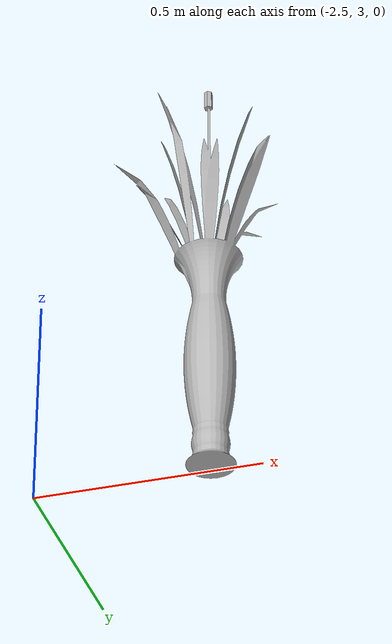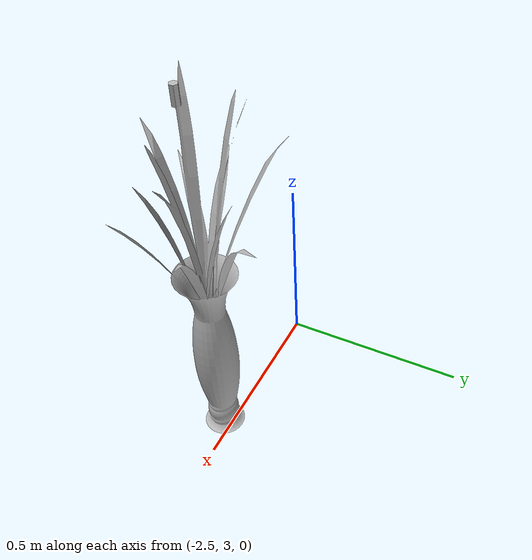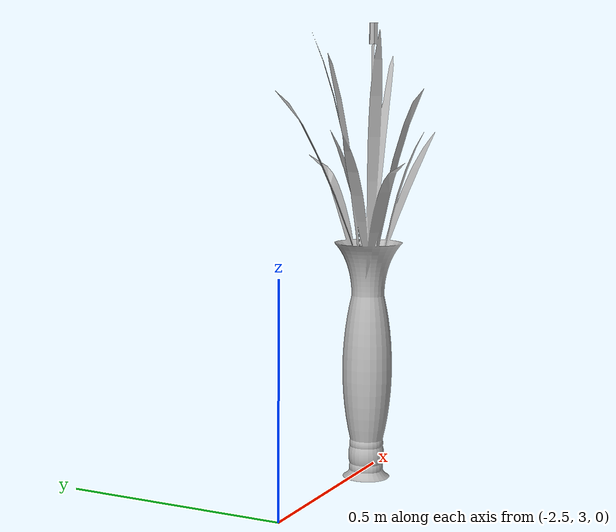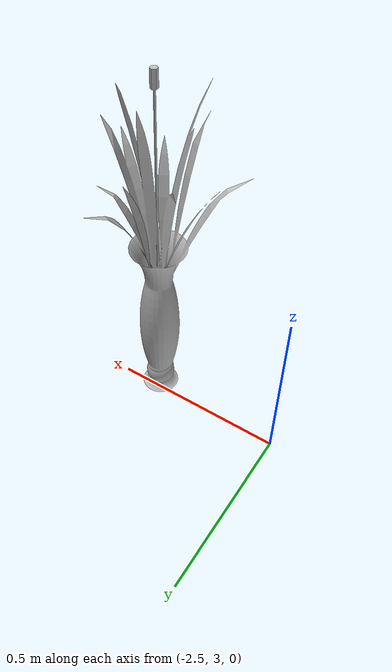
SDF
<?xml version="1.0" ?>
<sdf version="1.4">
  <model name="Flower-2">
    <link name="link">
      <collision name="collision">
	<geometry>
          <mesh>
            <uri>model://Flower-2/meshes/model.dae</uri>
          </mesh>
        </geometry>
      </collision>
      <visual name="visual">
        <geometry>
          <mesh>
            <uri>model://Flower-2/meshes/model.dae</uri>
          </mesh>
        </geometry>
      </visual>
    </link>
    <static>1</static>
  </model>
</sdf>
